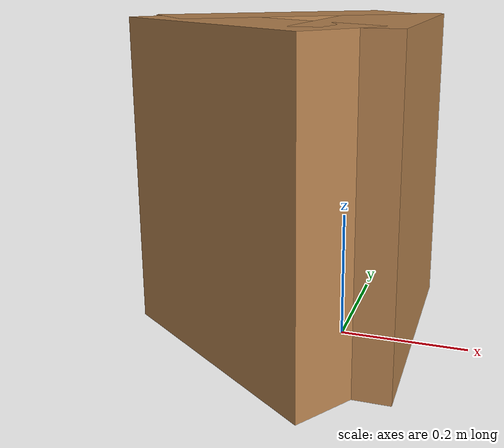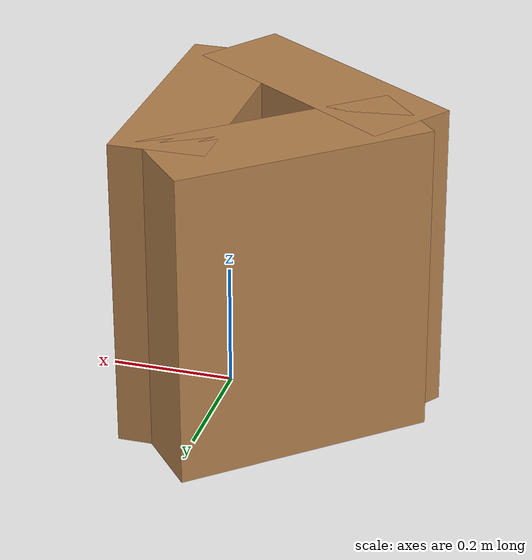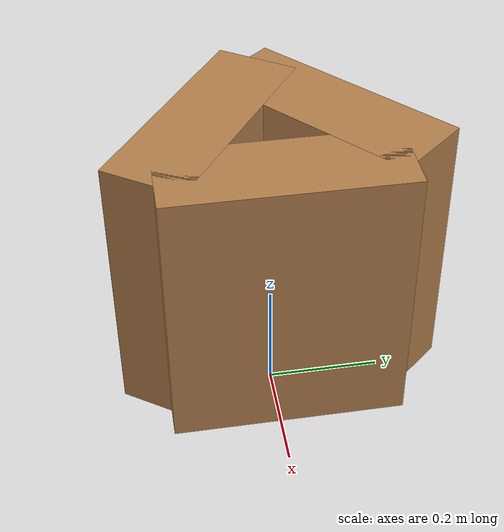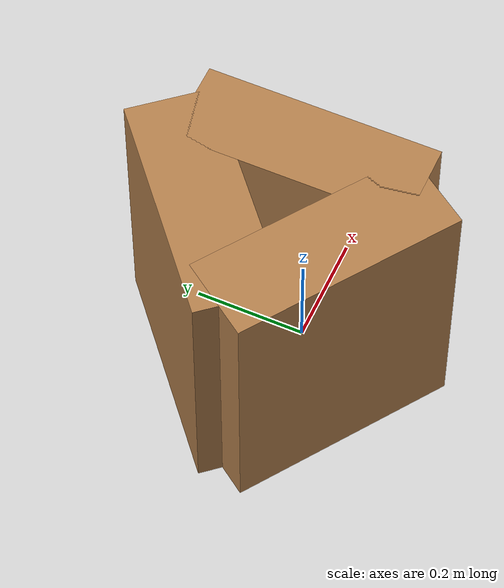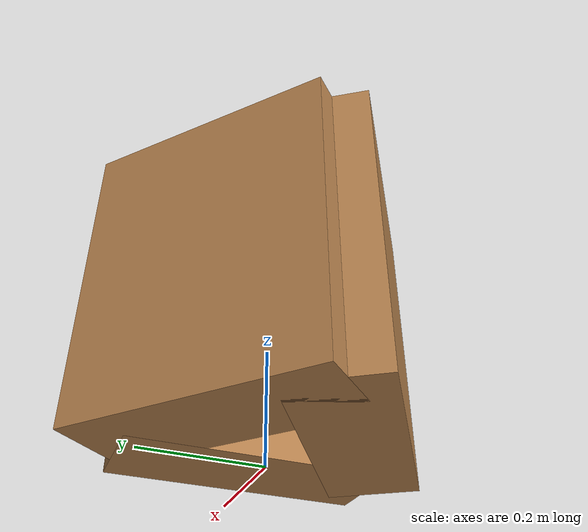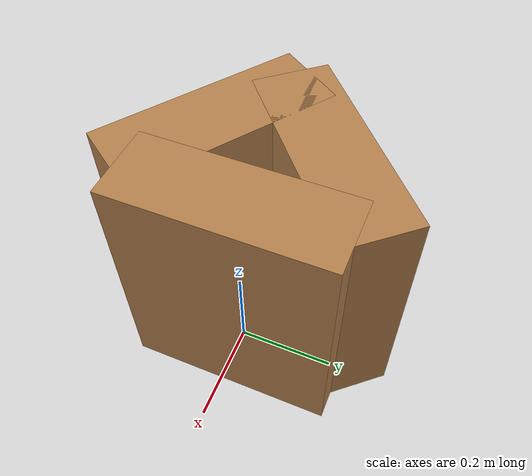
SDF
<?xml version='1.0'?>
<sdf version='1.7'>
  <model name='triangle'>
    <link name='turtlebot3_square::Wall_3'>
      <pose>0.039089 0.016853 0 0 0 -1.5708</pose>
      <self_collide>0</self_collide>
      <enable_wind>0</enable_wind>
      <kinematic>0</kinematic>
      <inertial>
        <inertia>
          <ixx>0</ixx>
          <ixy>0</ixy>
          <ixz>0</ixz>
          <iyy>0</iyy>
          <iyz>0</iyz>
          <izz>0</izz>
        </inertia>
        <mass>0</mass>
        <pose>0 0 0 0 -0 0</pose>
      </inertial>
      <visual name='Wall_3_Visual'>
        <pose>0 0 0.25 0 -0 0</pose>
        <geometry>
          <box>
            <size>0.413482 0.15 0.5</size>
          </box>
        </geometry>
        <material>
          <script>
            <uri>file://media/materials/scripts/gazebo.material</uri>
            <name>Gazebo/Wood</name>
          </script>
          <ambient>1 1 1 1</ambient>
          <shader type='pixel'/>
        </material>
        <transparency>0</transparency>
        <cast_shadows>1</cast_shadows>
      </visual>
      <collision name='Wall_3_Collision'>
        <laser_retro>0</laser_retro>
        <max_contacts>10</max_contacts>
        <pose>0 0 0.25 0 -0 0</pose>
        <geometry>
          <box>
            <size>0.413482 0.15 0.5</size>
          </box>
        </geometry>
        <surface>
          <friction>
            <ode>
              <mu>1</mu>
              <mu2>1</mu2>
              <fdir1>0 0 0</fdir1>
              <slip1>0</slip1>
              <slip2>0</slip2>
            </ode>
            <torsional>
              <coefficient>1</coefficient>
              <patch_radius>0</patch_radius>
              <surface_radius>0</surface_radius>
              <use_patch_radius>1</use_patch_radius>
              <ode>
                <slip>0</slip>
              </ode>
            </torsional>
          </friction>
          <bounce>
            <restitution_coefficient>0</restitution_coefficient>
            <threshold>1e+06</threshold>
          </bounce>
          <contact>
            <collide_without_contact>0</collide_without_contact>
            <collide_without_contact_bitmask>1</collide_without_contact_bitmask>
            <collide_bitmask>1</collide_bitmask>
            <ode>
              <soft_cfm>0</soft_cfm>
              <soft_erp>0.2</soft_erp>
              <kp>1e+13</kp>
              <kd>1</kd>
              <max_vel>0.01</max_vel>
              <min_depth>0</min_depth>
            </ode>
            <bullet>
              <split_impulse>1</split_impulse>
              <split_impulse_penetration_threshold>-0.01</split_impulse_penetration_threshold>
              <soft_cfm>0</soft_cfm>
              <soft_erp>0.2</soft_erp>
              <kp>1e+13</kp>
              <kd>1</kd>
            </bullet>
          </contact>
        </surface>
      </collision>
    </link>
    <link name='Wall_3_clone'>
      <pose>-0.127272 0.123617 0 0 0 -2.42907</pose>
      <self_collide>0</self_collide>
      <enable_wind>0</enable_wind>
      <kinematic>0</kinematic>
      <inertial>
        <inertia>
          <ixx>0</ixx>
          <ixy>0</ixy>
          <ixz>0</ixz>
          <iyy>0</iyy>
          <iyz>0</iyz>
          <izz>0</izz>
        </inertia>
        <mass>0</mass>
        <pose>0 0 0 0 -0 0</pose>
      </inertial>
      <visual name='Wall_3_Visual'>
        <pose>0 0 0.25 0 -0 0</pose>
        <geometry>
          <box>
            <size>0.413482 0.15 0.5</size>
          </box>
        </geometry>
        <material>
          <script>
            <uri>file://media/materials/scripts/gazebo.material</uri>
            <name>Gazebo/Wood</name>
          </script>
          <ambient>1 1 1 1</ambient>
          <shader type='pixel'/>
        </material>
        <transparency>0</transparency>
        <cast_shadows>1</cast_shadows>
      </visual>
      <collision name='Wall_3_Collision'>
        <laser_retro>0</laser_retro>
        <max_contacts>10</max_contacts>
        <pose>0 0 0.25 0 -0 0</pose>
        <geometry>
          <box>
            <size>0.413482 0.15 0.5</size>
          </box>
        </geometry>
        <surface>
          <friction>
            <ode>
              <mu>1</mu>
              <mu2>1</mu2>
              <fdir1>0 0 0</fdir1>
              <slip1>0</slip1>
              <slip2>0</slip2>
            </ode>
            <torsional>
              <coefficient>1</coefficient>
              <patch_radius>0</patch_radius>
              <surface_radius>0</surface_radius>
              <use_patch_radius>1</use_patch_radius>
              <ode>
                <slip>0</slip>
              </ode>
            </torsional>
          </friction>
          <bounce>
            <restitution_coefficient>0</restitution_coefficient>
            <threshold>1e+06</threshold>
          </bounce>
          <contact>
            <collide_without_contact>0</collide_without_contact>
            <collide_without_contact_bitmask>1</collide_without_contact_bitmask>
            <collide_bitmask>1</collide_bitmask>
            <ode>
              <soft_cfm>0</soft_cfm>
              <soft_erp>0.2</soft_erp>
              <kp>1e+13</kp>
              <kd>1</kd>
              <max_vel>0.01</max_vel>
              <min_depth>0</min_depth>
            </ode>
            <bullet>
              <split_impulse>1</split_impulse>
              <split_impulse_penetration_threshold>-0.01</split_impulse_penetration_threshold>
              <soft_cfm>0</soft_cfm>
              <soft_erp>0.2</soft_erp>
              <kp>1e+13</kp>
              <kd>1</kd>
            </bullet>
          </contact>
        </surface>
      </collision>
    </link>
    <link name='Wall_3_clone_0'>
      <pose>-0.125174 -0.091185 0 0 0 -0.602825</pose>
      <self_collide>0</self_collide>
      <enable_wind>0</enable_wind>
      <kinematic>0</kinematic>
      <inertial>
        <inertia>
          <ixx>0</ixx>
          <ixy>0</ixy>
          <ixz>0</ixz>
          <iyy>0</iyy>
          <iyz>0</iyz>
          <izz>0</izz>
        </inertia>
        <mass>0</mass>
        <pose>0 0 0 0 -0 0</pose>
      </inertial>
      <visual name='Wall_3_Visual'>
        <pose>0 0 0.25 0 -0 0</pose>
        <geometry>
          <box>
            <size>0.413482 0.15 0.5</size>
          </box>
        </geometry>
        <material>
          <script>
            <uri>file://media/materials/scripts/gazebo.material</uri>
            <name>Gazebo/Wood</name>
          </script>
          <ambient>1 1 1 1</ambient>
          <shader type='pixel'/>
        </material>
        <transparency>0</transparency>
        <cast_shadows>1</cast_shadows>
      </visual>
      <collision name='Wall_3_Collision'>
        <laser_retro>0</laser_retro>
        <max_contacts>10</max_contacts>
        <pose>0 0 0.25 0 -0 0</pose>
        <geometry>
          <box>
            <size>0.413482 0.15 0.5</size>
          </box>
        </geometry>
        <surface>
          <friction>
            <ode>
              <mu>1</mu>
              <mu2>1</mu2>
              <fdir1>0 0 0</fdir1>
              <slip1>0</slip1>
              <slip2>0</slip2>
            </ode>
            <torsional>
              <coefficient>1</coefficient>
              <patch_radius>0</patch_radius>
              <surface_radius>0</surface_radius>
              <use_patch_radius>1</use_patch_radius>
              <ode>
                <slip>0</slip>
              </ode>
            </torsional>
          </friction>
          <bounce>
            <restitution_coefficient>0</restitution_coefficient>
            <threshold>1e+06</threshold>
          </bounce>
          <contact>
            <collide_without_contact>0</collide_without_contact>
            <collide_without_contact_bitmask>1</collide_without_contact_bitmask>
            <collide_bitmask>1</collide_bitmask>
            <ode>
              <soft_cfm>0</soft_cfm>
              <soft_erp>0.2</soft_erp>
              <kp>1e+13</kp>
              <kd>1</kd>
              <max_vel>0.01</max_vel>
              <min_depth>0</min_depth>
            </ode>
            <bullet>
              <split_impulse>1</split_impulse>
              <split_impulse_penetration_threshold>-0.01</split_impulse_penetration_threshold>
              <soft_cfm>0</soft_cfm>
              <soft_erp>0.2</soft_erp>
              <kp>1e+13</kp>
              <kd>1</kd>
            </bullet>
          </contact>
        </surface>
      </collision>
    </link>
    <static>1</static>
    <allow_auto_disable>1</allow_auto_disable>
  </model>
</sdf>
